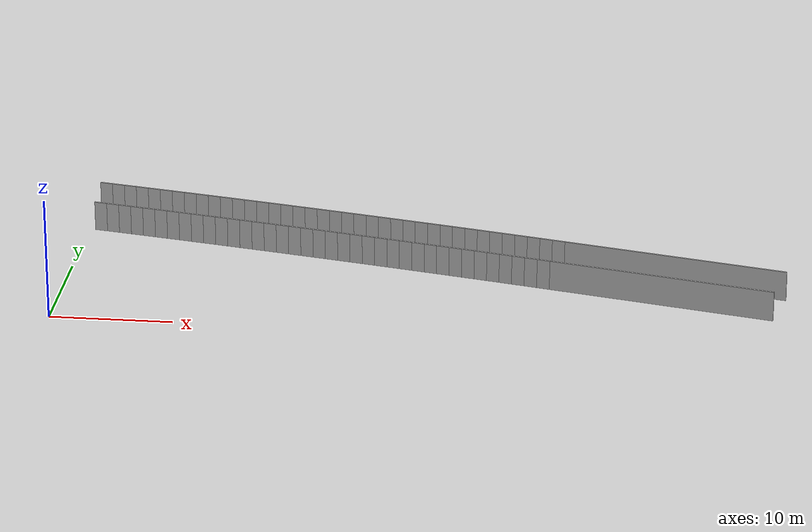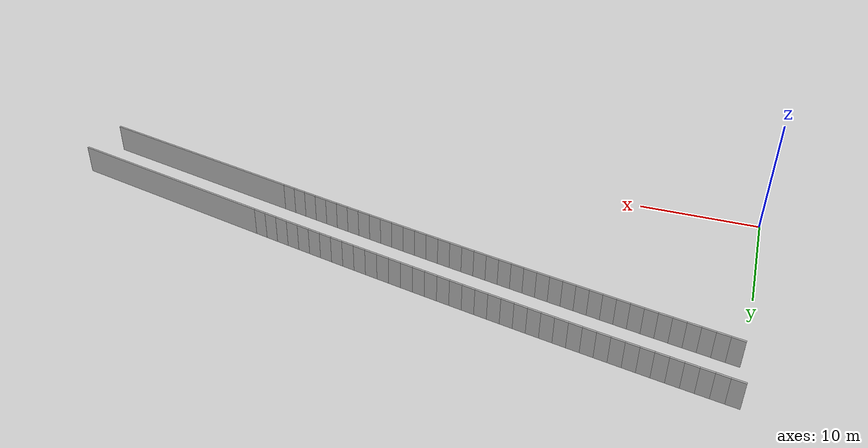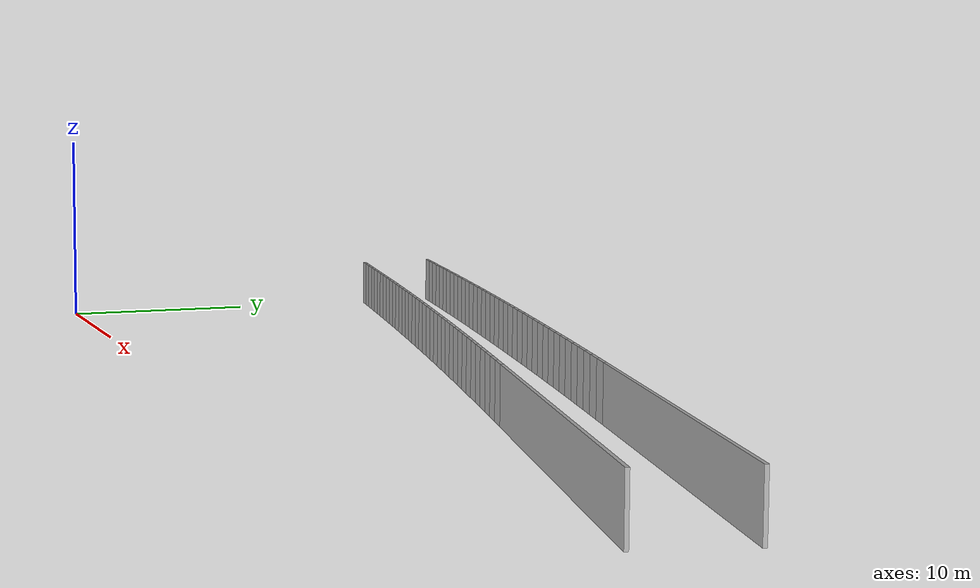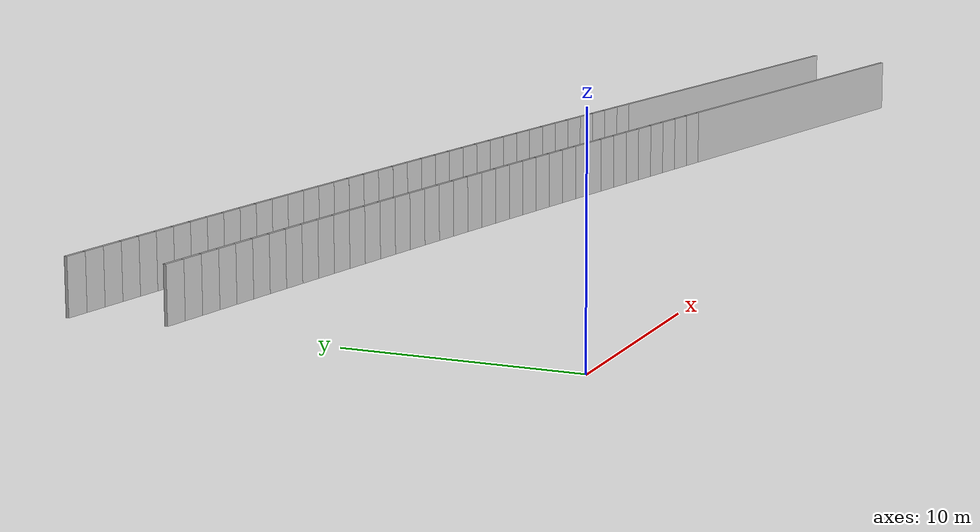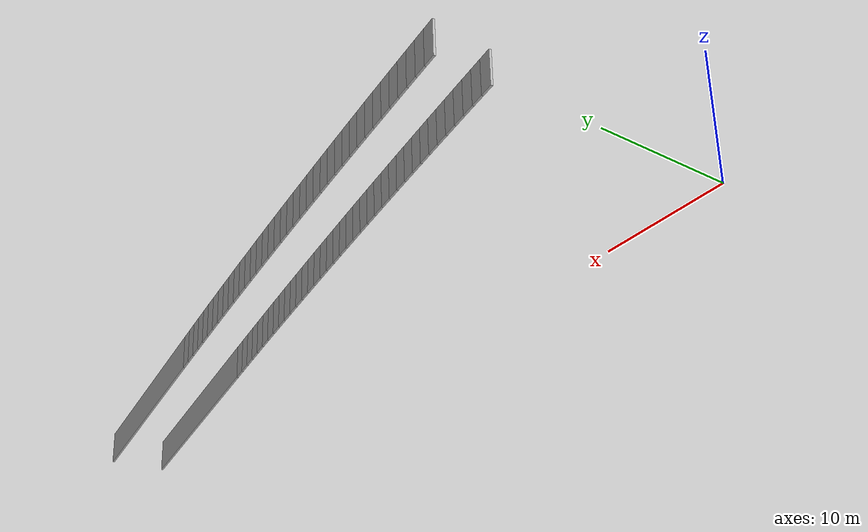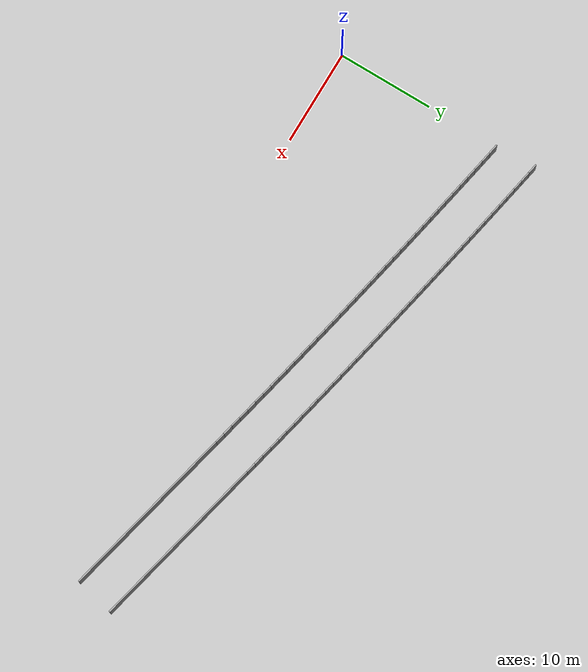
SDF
<?xml version="1.0" ?>
<sdf version="1.6">
  <model name="sps_3046">
    <pose frame="">0 0 0 0 -0 0</pose>
    <static>1</static>
    <self_collide>0</self_collide>
    <allow_auto_disable>0</allow_auto_disable>
    <link name="Wall318">
      <kinematic>0</kinematic>
      <gravity>1</gravity>
      <self_collide>0</self_collide>
      <collision name="collision">
        <geometry>
          <box>
            <size>18.671 0.15 2.5</size>
          </box>
        </geometry>
        <pose frame="">0 0 0 0 -0 0</pose>
      </collision>
      <visual name="visual">
        <geometry>
          <box>
            <size>18.671 0.15 2.5</size>
          </box>
        </geometry>
        <pose frame="">0 0 0 0 -0 0</pose>
        <cast_shadows>1</cast_shadows>
        <transparency>0.0</transparency>
      </visual>
      <pose frame="">48.5033 7.4247 1.25 0 -0 2.91246</pose>
    </link>
    <link name="Wall650">
      <kinematic>0</kinematic>
      <gravity>1</gravity>
      <self_collide>0</self_collide>
      <collision name="collision">
        <geometry>
          <box>
            <size>18.6821 0.15 2.5</size>
          </box>
        </geometry>
        <pose frame="">0 0 0 0 -0 0</pose>
      </collision>
      <visual name="visual">
        <geometry>
          <box>
            <size>18.6821 0.15 2.5</size>
          </box>
        </geometry>
        <pose frame="">0 0 0 0 -0 0</pose>
        <cast_shadows>1</cast_shadows>
        <transparency>0.0</transparency>
      </visual>
      <pose frame="">49.4523 11.4541 1.25 0 0 -0.229081</pose>
    </link>
    <link name="Wall8104">
      <kinematic>0</kinematic>
      <gravity>1</gravity>
      <self_collide>0</self_collide>
      <collision name="collision">
        <geometry>
          <box>
            <size>1.07591 0.15 2.5</size>
          </box>
        </geometry>
        <pose frame="">0 0 0 0 -0 0</pose>
      </collision>
      <visual name="visual">
        <geometry>
          <box>
            <size>1.07591 0.15 2.5</size>
          </box>
        </geometry>
        <pose frame="">0 0 0 0 -0 0</pose>
        <cast_shadows>1</cast_shadows>
        <transparency>0.0</transparency>
      </visual>
      <pose frame="">38.8879 9.66731 1.25 0 -0 2.91245</pose>
    </link>
    <link name="Wall8105">
      <kinematic>0</kinematic>
      <gravity>1</gravity>
      <self_collide>0</self_collide>
      <collision name="collision">
        <geometry>
          <box>
            <size>1.07587 0.15 2.5</size>
          </box>
        </geometry>
        <pose frame="">0 0 0 0 -0 0</pose>
      </collision>
      <visual name="visual">
        <geometry>
          <box>
            <size>1.07587 0.15 2.5</size>
          </box>
        </geometry>
        <pose frame="">0 0 0 0 -0 0</pose>
        <cast_shadows>1</cast_shadows>
        <transparency>0.0</transparency>
      </visual>
      <pose frame="">37.84 9.91121 1.25 0 -0 2.91337</pose>
    </link>
    <link name="Wall8106">
      <kinematic>0</kinematic>
      <gravity>1</gravity>
      <self_collide>0</self_collide>
      <collision name="collision">
        <geometry>
          <box>
            <size>1.07597 0.15 2.5</size>
          </box>
        </geometry>
        <pose frame="">0 0 0 0 -0 0</pose>
      </collision>
      <visual name="visual">
        <geometry>
          <box>
            <size>1.07597 0.15 2.5</size>
          </box>
        </geometry>
        <pose frame="">0 0 0 0 -0 0</pose>
        <cast_shadows>1</cast_shadows>
        <transparency>0.0</transparency>
      </visual>
      <pose frame="">36.7919 10.1539 1.25 0 -0 2.91473</pose>
    </link>
    <link name="Wall8107">
      <kinematic>0</kinematic>
      <gravity>1</gravity>
      <self_collide>0</self_collide>
      <collision name="collision">
        <geometry>
          <box>
            <size>1.07592 0.15 2.5</size>
          </box>
        </geometry>
        <pose frame="">0 0 0 0 -0 0</pose>
      </collision>
      <visual name="visual">
        <geometry>
          <box>
            <size>1.07592 0.15 2.5</size>
          </box>
        </geometry>
        <pose frame="">0 0 0 0 -0 0</pose>
        <cast_shadows>1</cast_shadows>
        <transparency>0.0</transparency>
      </visual>
      <pose frame="">35.7434 10.3954 1.25 0 -0 2.91571</pose>
    </link>
    <link name="Wall8108">
      <kinematic>0</kinematic>
      <gravity>1</gravity>
      <self_collide>0</self_collide>
      <collision name="collision">
        <geometry>
          <box>
            <size>1.07607 0.15 2.5</size>
          </box>
        </geometry>
        <pose frame="">0 0 0 0 -0 0</pose>
      </collision>
      <visual name="visual">
        <geometry>
          <box>
            <size>1.07607 0.15 2.5</size>
          </box>
        </geometry>
        <pose frame="">0 0 0 0 -0 0</pose>
        <cast_shadows>1</cast_shadows>
        <transparency>0.0</transparency>
      </visual>
      <pose frame="">34.6946 10.6358 1.25 0 -0 2.91685</pose>
    </link>
    <link name="Wall8109">
      <kinematic>0</kinematic>
      <gravity>1</gravity>
      <self_collide>0</self_collide>
      <collision name="collision">
        <geometry>
          <box>
            <size>1.07598 0.15 2.5</size>
          </box>
        </geometry>
        <pose frame="">0 0 0 0 -0 0</pose>
      </collision>
      <visual name="visual">
        <geometry>
          <box>
            <size>1.07598 0.15 2.5</size>
          </box>
        </geometry>
        <pose frame="">0 0 0 0 -0 0</pose>
        <cast_shadows>1</cast_shadows>
        <transparency>0.0</transparency>
      </visual>
      <pose frame="">33.6455 10.875 1.25 0 -0 2.918</pose>
    </link>
    <link name="Wall8110">
      <kinematic>0</kinematic>
      <gravity>1</gravity>
      <self_collide>0</self_collide>
      <collision name="collision">
        <geometry>
          <box>
            <size>1.07596 0.15 2.5</size>
          </box>
        </geometry>
        <pose frame="">0 0 0 0 -0 0</pose>
      </collision>
      <visual name="visual">
        <geometry>
          <box>
            <size>1.07596 0.15 2.5</size>
          </box>
        </geometry>
        <pose frame="">0 0 0 0 -0 0</pose>
        <cast_shadows>1</cast_shadows>
        <transparency>0.0</transparency>
      </visual>
      <pose frame="">32.5962 11.113 1.25 0 -0 2.9191</pose>
    </link>
    <link name="Wall8111">
      <kinematic>0</kinematic>
      <gravity>1</gravity>
      <self_collide>0</self_collide>
      <collision name="collision">
        <geometry>
          <box>
            <size>1.07581 0.15 2.5</size>
          </box>
        </geometry>
        <pose frame="">0 0 0 0 -0 0</pose>
      </collision>
      <visual name="visual">
        <geometry>
          <box>
            <size>1.07581 0.15 2.5</size>
          </box>
        </geometry>
        <pose frame="">0 0 0 0 -0 0</pose>
        <cast_shadows>1</cast_shadows>
        <transparency>0.0</transparency>
      </visual>
      <pose frame="">31.5467 11.3498 1.25 0 -0 2.92023</pose>
    </link>
    <link name="Wall8112">
      <kinematic>0</kinematic>
      <gravity>1</gravity>
      <self_collide>0</self_collide>
      <collision name="collision">
        <geometry>
          <box>
            <size>1.07596 0.15 2.5</size>
          </box>
        </geometry>
        <pose frame="">0 0 0 0 -0 0</pose>
      </collision>
      <visual name="visual">
        <geometry>
          <box>
            <size>1.07596 0.15 2.5</size>
          </box>
        </geometry>
        <pose frame="">0 0 0 0 -0 0</pose>
        <cast_shadows>1</cast_shadows>
        <transparency>0.0</transparency>
      </visual>
      <pose frame="">30.4969 11.5854 1.25 0 -0 2.92142</pose>
    </link>
    <link name="Wall8113">
      <kinematic>0</kinematic>
      <gravity>1</gravity>
      <self_collide>0</self_collide>
      <collision name="collision">
        <geometry>
          <box>
            <size>1.07595 0.15 2.5</size>
          </box>
        </geometry>
        <pose frame="">0 0 0 0 -0 0</pose>
      </collision>
      <visual name="visual">
        <geometry>
          <box>
            <size>1.07595 0.15 2.5</size>
          </box>
        </geometry>
        <pose frame="">0 0 0 0 -0 0</pose>
        <cast_shadows>1</cast_shadows>
        <transparency>0.0</transparency>
      </visual>
      <pose frame="">29.4468 11.8198 1.25 0 -0 2.92252</pose>
    </link>
    <link name="Wall8114">
      <kinematic>0</kinematic>
      <gravity>1</gravity>
      <self_collide>0</self_collide>
      <collision name="collision">
        <geometry>
          <box>
            <size>1.07603 0.15 2.5</size>
          </box>
        </geometry>
        <pose frame="">0 0 0 0 -0 0</pose>
      </collision>
      <visual name="visual">
        <geometry>
          <box>
            <size>1.07603 0.15 2.5</size>
          </box>
        </geometry>
        <pose frame="">0 0 0 0 -0 0</pose>
        <cast_shadows>1</cast_shadows>
        <transparency>0.0</transparency>
      </visual>
      <pose frame="">28.3964 12.053 1.25 0 -0 2.92376</pose>
    </link>
    <link name="Wall8115">
      <kinematic>0</kinematic>
      <gravity>1</gravity>
      <self_collide>0</self_collide>
      <collision name="collision">
        <geometry>
          <box>
            <size>1.07597 0.15 2.5</size>
          </box>
        </geometry>
        <pose frame="">0 0 0 0 -0 0</pose>
      </collision>
      <visual name="visual">
        <geometry>
          <box>
            <size>1.07597 0.15 2.5</size>
          </box>
        </geometry>
        <pose frame="">0 0 0 0 -0 0</pose>
        <cast_shadows>1</cast_shadows>
        <transparency>0.0</transparency>
      </visual>
      <pose frame="">27.3457 12.285 1.25 0 -0 2.92479</pose>
    </link>
    <link name="Wall8116">
      <kinematic>0</kinematic>
      <gravity>1</gravity>
      <self_collide>0</self_collide>
      <collision name="collision">
        <geometry>
          <box>
            <size>1.07593 0.15 2.5</size>
          </box>
        </geometry>
        <pose frame="">0 0 0 0 -0 0</pose>
      </collision>
      <visual name="visual">
        <geometry>
          <box>
            <size>1.07593 0.15 2.5</size>
          </box>
        </geometry>
        <pose frame="">0 0 0 0 -0 0</pose>
        <cast_shadows>1</cast_shadows>
        <transparency>0.0</transparency>
      </visual>
      <pose frame="">26.2948 12.5158 1.25 0 -0 2.92601</pose>
    </link>
    <link name="Wall8117">
      <kinematic>0</kinematic>
      <gravity>1</gravity>
      <self_collide>0</self_collide>
      <collision name="collision">
        <geometry>
          <box>
            <size>1.07586 0.15 2.5</size>
          </box>
        </geometry>
        <pose frame="">0 0 0 0 -0 0</pose>
      </collision>
      <visual name="visual">
        <geometry>
          <box>
            <size>1.07586 0.15 2.5</size>
          </box>
        </geometry>
        <pose frame="">0 0 0 0 -0 0</pose>
        <cast_shadows>1</cast_shadows>
        <transparency>0.0</transparency>
      </visual>
      <pose frame="">25.2436 12.7454 1.25 0 -0 2.9271</pose>
    </link>
    <link name="Wall8118">
      <kinematic>0</kinematic>
      <gravity>1</gravity>
      <self_collide>0</self_collide>
      <collision name="collision">
        <geometry>
          <box>
            <size>1.07601 0.15 2.5</size>
          </box>
        </geometry>
        <pose frame="">0 0 0 0 -0 0</pose>
      </collision>
      <visual name="visual">
        <geometry>
          <box>
            <size>1.07601 0.15 2.5</size>
          </box>
        </geometry>
        <pose frame="">0 0 0 0 -0 0</pose>
        <cast_shadows>1</cast_shadows>
        <transparency>0.0</transparency>
      </visual>
      <pose frame="">24.1923 12.9739 1.25 0 -0 2.92805</pose>
    </link>
    <link name="Wall8119">
      <kinematic>0</kinematic>
      <gravity>1</gravity>
      <self_collide>0</self_collide>
      <collision name="collision">
        <geometry>
          <box>
            <size>1.07594 0.15 2.5</size>
          </box>
        </geometry>
        <pose frame="">0 0 0 0 -0 0</pose>
      </collision>
      <visual name="visual">
        <geometry>
          <box>
            <size>1.07594 0.15 2.5</size>
          </box>
        </geometry>
        <pose frame="">0 0 0 0 -0 0</pose>
        <cast_shadows>1</cast_shadows>
        <transparency>0.0</transparency>
      </visual>
      <pose frame="">23.1406 13.2012 1.25 0 -0 2.92943</pose>
    </link>
    <link name="Wall8120">
      <kinematic>0</kinematic>
      <gravity>1</gravity>
      <self_collide>0</self_collide>
      <collision name="collision">
        <geometry>
          <box>
            <size>1.07606 0.15 2.5</size>
          </box>
        </geometry>
        <pose frame="">0 0 0 0 -0 0</pose>
      </collision>
      <visual name="visual">
        <geometry>
          <box>
            <size>1.07606 0.15 2.5</size>
          </box>
        </geometry>
        <pose frame="">0 0 0 0 -0 0</pose>
        <cast_shadows>1</cast_shadows>
        <transparency>0.0</transparency>
      </visual>
      <pose frame="">22.0886 13.4272 1.25 0 -0 2.93056</pose>
    </link>
    <link name="Wall8121">
      <kinematic>0</kinematic>
      <gravity>1</gravity>
      <self_collide>0</self_collide>
      <collision name="collision">
        <geometry>
          <box>
            <size>1.07582 0.15 2.5</size>
          </box>
        </geometry>
        <pose frame="">0 0 0 0 -0 0</pose>
      </collision>
      <visual name="visual">
        <geometry>
          <box>
            <size>1.07582 0.15 2.5</size>
          </box>
        </geometry>
        <pose frame="">0 0 0 0 -0 0</pose>
        <cast_shadows>1</cast_shadows>
        <transparency>0.0</transparency>
      </visual>
      <pose frame="">21.0364 13.652 1.25 0 -0 2.93161</pose>
    </link>
    <link name="Wall8122">
      <kinematic>0</kinematic>
      <gravity>1</gravity>
      <self_collide>0</self_collide>
      <collision name="collision">
        <geometry>
          <box>
            <size>1.07597 0.15 2.5</size>
          </box>
        </geometry>
        <pose frame="">0 0 0 0 -0 0</pose>
      </collision>
      <visual name="visual">
        <geometry>
          <box>
            <size>1.07597 0.15 2.5</size>
          </box>
        </geometry>
        <pose frame="">0 0 0 0 -0 0</pose>
        <cast_shadows>1</cast_shadows>
        <transparency>0.0</transparency>
      </visual>
      <pose frame="">19.984 13.8756 1.25 0 -0 2.93286</pose>
    </link>
    <link name="Wall8123">
      <kinematic>0</kinematic>
      <gravity>1</gravity>
      <self_collide>0</self_collide>
      <collision name="collision">
        <geometry>
          <box>
            <size>1.07609 0.15 2.5</size>
          </box>
        </geometry>
        <pose frame="">0 0 0 0 -0 0</pose>
      </collision>
      <visual name="visual">
        <geometry>
          <box>
            <size>1.07609 0.15 2.5</size>
          </box>
        </geometry>
        <pose frame="">0 0 0 0 -0 0</pose>
        <cast_shadows>1</cast_shadows>
        <transparency>0.0</transparency>
      </visual>
      <pose frame="">18.9312 14.098 1.25 0 -0 2.93399</pose>
    </link>
    <link name="Wall8124">
      <kinematic>0</kinematic>
      <gravity>1</gravity>
      <self_collide>0</self_collide>
      <collision name="collision">
        <geometry>
          <box>
            <size>1.07594 0.15 2.5</size>
          </box>
        </geometry>
        <pose frame="">0 0 0 0 -0 0</pose>
      </collision>
      <visual name="visual">
        <geometry>
          <box>
            <size>1.07594 0.15 2.5</size>
          </box>
        </geometry>
        <pose frame="">0 0 0 0 -0 0</pose>
        <cast_shadows>1</cast_shadows>
        <transparency>0.0</transparency>
      </visual>
      <pose frame="">17.8782 14.3193 1.25 0 -0 2.93489</pose>
    </link>
    <link name="Wall8125">
      <kinematic>0</kinematic>
      <gravity>1</gravity>
      <self_collide>0</self_collide>
      <collision name="collision">
        <geometry>
          <box>
            <size>1.07602 0.15 2.5</size>
          </box>
        </geometry>
        <pose frame="">0 0 0 0 -0 0</pose>
      </collision>
      <visual name="visual">
        <geometry>
          <box>
            <size>1.07602 0.15 2.5</size>
          </box>
        </geometry>
        <pose frame="">0 0 0 0 -0 0</pose>
        <cast_shadows>1</cast_shadows>
        <transparency>0.0</transparency>
      </visual>
      <pose frame="">16.8249 14.5394 1.25 0 -0 2.93623</pose>
    </link>
    <link name="Wall8126">
      <kinematic>0</kinematic>
      <gravity>1</gravity>
      <self_collide>0</self_collide>
      <collision name="collision">
        <geometry>
          <box>
            <size>1.07593 0.15 2.5</size>
          </box>
        </geometry>
        <pose frame="">0 0 0 0 -0 0</pose>
      </collision>
      <visual name="visual">
        <geometry>
          <box>
            <size>1.07593 0.15 2.5</size>
          </box>
        </geometry>
        <pose frame="">0 0 0 0 -0 0</pose>
        <cast_shadows>1</cast_shadows>
        <transparency>0.0</transparency>
      </visual>
      <pose frame="">15.7714 14.7582 1.25 0 -0 2.93743</pose>
    </link>
    <link name="Wall8127">
      <kinematic>0</kinematic>
      <gravity>1</gravity>
      <self_collide>0</self_collide>
      <collision name="collision">
        <geometry>
          <box>
            <size>1.07589 0.15 2.5</size>
          </box>
        </geometry>
        <pose frame="">0 0 0 0 -0 0</pose>
      </collision>
      <visual name="visual">
        <geometry>
          <box>
            <size>1.07589 0.15 2.5</size>
          </box>
        </geometry>
        <pose frame="">0 0 0 0 -0 0</pose>
        <cast_shadows>1</cast_shadows>
        <transparency>0.0</transparency>
      </visual>
      <pose frame="">14.7178 14.9758 1.25 0 -0 2.93847</pose>
    </link>
    <link name="Wall8128">
      <kinematic>0</kinematic>
      <gravity>1</gravity>
      <self_collide>0</self_collide>
      <collision name="collision">
        <geometry>
          <box>
            <size>1.07605 0.15 2.5</size>
          </box>
        </geometry>
        <pose frame="">0 0 0 0 -0 0</pose>
      </collision>
      <visual name="visual">
        <geometry>
          <box>
            <size>1.07605 0.15 2.5</size>
          </box>
        </geometry>
        <pose frame="">0 0 0 0 -0 0</pose>
        <cast_shadows>1</cast_shadows>
        <transparency>0.0</transparency>
      </visual>
      <pose frame="">13.6638 15.1922 1.25 0 -0 2.93971</pose>
    </link>
    <link name="Wall8129">
      <kinematic>0</kinematic>
      <gravity>1</gravity>
      <self_collide>0</self_collide>
      <collision name="collision">
        <geometry>
          <box>
            <size>1.07606 0.15 2.5</size>
          </box>
        </geometry>
        <pose frame="">0 0 0 0 -0 0</pose>
      </collision>
      <visual name="visual">
        <geometry>
          <box>
            <size>1.07606 0.15 2.5</size>
          </box>
        </geometry>
        <pose frame="">0 0 0 0 -0 0</pose>
        <cast_shadows>1</cast_shadows>
        <transparency>0.0</transparency>
      </visual>
      <pose frame="">12.6095 15.4074 1.25 0 -0 2.94082</pose>
    </link>
    <link name="Wall8130">
      <kinematic>0</kinematic>
      <gravity>1</gravity>
      <self_collide>0</self_collide>
      <collision name="collision">
        <geometry>
          <box>
            <size>1.07577 0.15 2.5</size>
          </box>
        </geometry>
        <pose frame="">0 0 0 0 -0 0</pose>
      </collision>
      <visual name="visual">
        <geometry>
          <box>
            <size>1.07577 0.15 2.5</size>
          </box>
        </geometry>
        <pose frame="">0 0 0 0 -0 0</pose>
        <cast_shadows>1</cast_shadows>
        <transparency>0.0</transparency>
      </visual>
      <pose frame="">11.555 15.6214 1.25 0 -0 2.94186</pose>
    </link>
    <link name="Wall8131">
      <kinematic>0</kinematic>
      <gravity>1</gravity>
      <self_collide>0</self_collide>
      <collision name="collision">
        <geometry>
          <box>
            <size>1.07616 0.15 2.5</size>
          </box>
        </geometry>
        <pose frame="">0 0 0 0 -0 0</pose>
      </collision>
      <visual name="visual">
        <geometry>
          <box>
            <size>1.07616 0.15 2.5</size>
          </box>
        </geometry>
        <pose frame="">0 0 0 0 -0 0</pose>
        <cast_shadows>1</cast_shadows>
        <transparency>0.0</transparency>
      </visual>
      <pose frame="">10.5004 15.8343 1.25 0 -0 2.94292</pose>
    </link>
    <link name="Wall8132">
      <kinematic>0</kinematic>
      <gravity>1</gravity>
      <self_collide>0</self_collide>
      <collision name="collision">
        <geometry>
          <box>
            <size>1.07589 0.15 2.5</size>
          </box>
        </geometry>
        <pose frame="">0 0 0 0 -0 0</pose>
      </collision>
      <visual name="visual">
        <geometry>
          <box>
            <size>1.07589 0.15 2.5</size>
          </box>
        </geometry>
        <pose frame="">0 0 0 0 -0 0</pose>
        <cast_shadows>1</cast_shadows>
        <transparency>0.0</transparency>
      </visual>
      <pose frame="">9.44537 16.046 1.25 0 -0 2.9442</pose>
    </link>
    <link name="Wall8133">
      <kinematic>0</kinematic>
      <gravity>1</gravity>
      <self_collide>0</self_collide>
      <collision name="collision">
        <geometry>
          <box>
            <size>1.07607 0.15 2.5</size>
          </box>
        </geometry>
        <pose frame="">0 0 0 0 -0 0</pose>
      </collision>
      <visual name="visual">
        <geometry>
          <box>
            <size>1.07607 0.15 2.5</size>
          </box>
        </geometry>
        <pose frame="">0 0 0 0 -0 0</pose>
        <cast_shadows>1</cast_shadows>
        <transparency>0.0</transparency>
      </visual>
      <pose frame="">8.39016 16.2564 1.25 0 -0 2.94539</pose>
    </link>
    <link name="Wall8134">
      <kinematic>0</kinematic>
      <gravity>1</gravity>
      <self_collide>0</self_collide>
      <collision name="collision">
        <geometry>
          <box>
            <size>1.07584 0.15 2.5</size>
          </box>
        </geometry>
        <pose frame="">0 0 0 0 -0 0</pose>
      </collision>
      <visual name="visual">
        <geometry>
          <box>
            <size>1.07584 0.15 2.5</size>
          </box>
        </geometry>
        <pose frame="">0 0 0 0 -0 0</pose>
        <cast_shadows>1</cast_shadows>
        <transparency>0.0</transparency>
      </visual>
      <pose frame="">7.33474 16.4656 1.25 0 -0 2.94644</pose>
    </link>
    <link name="Wall8135">
      <kinematic>0</kinematic>
      <gravity>1</gravity>
      <self_collide>0</self_collide>
      <collision name="collision">
        <geometry>
          <box>
            <size>1.07596 0.15 2.5</size>
          </box>
        </geometry>
        <pose frame="">0 0 0 0 -0 0</pose>
      </collision>
      <visual name="visual">
        <geometry>
          <box>
            <size>1.07596 0.15 2.5</size>
          </box>
        </geometry>
        <pose frame="">0 0 0 0 -0 0</pose>
        <cast_shadows>1</cast_shadows>
        <transparency>0.0</transparency>
      </visual>
      <pose frame="">6.27914 16.6736 1.25 0 -0 2.94762</pose>
    </link>
    <link name="Wall8136">
      <kinematic>0</kinematic>
      <gravity>1</gravity>
      <self_collide>0</self_collide>
      <collision name="collision">
        <geometry>
          <box>
            <size>1.07591 0.15 2.5</size>
          </box>
        </geometry>
        <pose frame="">0 0 0 0 -0 0</pose>
      </collision>
      <visual name="visual">
        <geometry>
          <box>
            <size>1.07591 0.15 2.5</size>
          </box>
        </geometry>
        <pose frame="">0 0 0 0 -0 0</pose>
        <cast_shadows>1</cast_shadows>
        <transparency>0.0</transparency>
      </visual>
      <pose frame="">5.22326 16.8804 1.25 0 -0 2.94877</pose>
    </link>
    <link name="Wall8137">
      <kinematic>0</kinematic>
      <gravity>1</gravity>
      <self_collide>0</self_collide>
      <collision name="collision">
        <geometry>
          <box>
            <size>1.07593 0.15 2.5</size>
          </box>
        </geometry>
        <pose frame="">0 0 0 0 -0 0</pose>
      </collision>
      <visual name="visual">
        <geometry>
          <box>
            <size>1.07593 0.15 2.5</size>
          </box>
        </geometry>
        <pose frame="">0 0 0 0 -0 0</pose>
        <cast_shadows>1</cast_shadows>
        <transparency>0.0</transparency>
      </visual>
      <pose frame="">4.16717 17.086 1.25 0 -0 2.94987</pose>
    </link>
    <link name="Wall8138">
      <kinematic>0</kinematic>
      <gravity>1</gravity>
      <self_collide>0</self_collide>
      <collision name="collision">
        <geometry>
          <box>
            <size>1.07609 0.15 2.5</size>
          </box>
        </geometry>
        <pose frame="">0 0 0 0 -0 0</pose>
      </collision>
      <visual name="visual">
        <geometry>
          <box>
            <size>1.07609 0.15 2.5</size>
          </box>
        </geometry>
        <pose frame="">0 0 0 0 -0 0</pose>
        <cast_shadows>1</cast_shadows>
        <transparency>0.0</transparency>
      </visual>
      <pose frame="">3.11077 17.2905 1.25 0 -0 2.95088</pose>
    </link>
    <link name="Wall8139">
      <kinematic>0</kinematic>
      <gravity>1</gravity>
      <self_collide>0</self_collide>
      <collision name="collision">
        <geometry>
          <box>
            <size>1.0759 0.15 2.5</size>
          </box>
        </geometry>
        <pose frame="">0 0 0 0 -0 0</pose>
      </collision>
      <visual name="visual">
        <geometry>
          <box>
            <size>1.0759 0.15 2.5</size>
          </box>
        </geometry>
        <pose frame="">0 0 0 0 -0 0</pose>
        <cast_shadows>1</cast_shadows>
        <transparency>0.0</transparency>
      </visual>
      <pose frame="">2.05416 17.4938 1.25 0 -0 2.95212</pose>
    </link>
    <link name="Wall8140">
      <kinematic>0</kinematic>
      <gravity>1</gravity>
      <self_collide>0</self_collide>
      <collision name="collision">
        <geometry>
          <box>
            <size>1.07603 0.15 2.5</size>
          </box>
        </geometry>
        <pose frame="">0 0 0 0 -0 0</pose>
      </collision>
      <visual name="visual">
        <geometry>
          <box>
            <size>1.07603 0.15 2.5</size>
          </box>
        </geometry>
        <pose frame="">0 0 0 0 -0 0</pose>
        <cast_shadows>1</cast_shadows>
        <transparency>0.0</transparency>
      </visual>
      <pose frame="">0.997337 17.6958 1.25 0 -0 2.9533</pose>
    </link>
    <link name="Wall9069">
      <kinematic>0</kinematic>
      <gravity>1</gravity>
      <self_collide>0</self_collide>
      <collision name="collision">
        <geometry>
          <box>
            <size>1.08065 0.15 2.5</size>
          </box>
        </geometry>
        <pose frame="">0 0 0 0 -0 0</pose>
      </collision>
      <visual name="visual">
        <geometry>
          <box>
            <size>1.08065 0.15 2.5</size>
          </box>
        </geometry>
        <pose frame="">0 0 0 0 -0 0</pose>
        <cast_shadows>1</cast_shadows>
        <transparency>0.0</transparency>
      </visual>
      <pose frame="">39.8291 13.6981 1.25 0 -0 2.91231</pose>
    </link>
    <link name="Wall9070">
      <kinematic>0</kinematic>
      <gravity>1</gravity>
      <self_collide>0</self_collide>
      <collision name="collision">
        <geometry>
          <box>
            <size>1.08062 0.15 2.5</size>
          </box>
        </geometry>
        <pose frame="">0 0 0 0 -0 0</pose>
      </collision>
      <visual name="visual">
        <geometry>
          <box>
            <size>1.08062 0.15 2.5</size>
          </box>
        </geometry>
        <pose frame="">0 0 0 0 -0 0</pose>
        <cast_shadows>1</cast_shadows>
        <transparency>0.0</transparency>
      </visual>
      <pose frame="">38.7766 13.9431 1.25 0 -0 2.91341</pose>
    </link>
    <link name="Wall9071">
      <kinematic>0</kinematic>
      <gravity>1</gravity>
      <self_collide>0</self_collide>
      <collision name="collision">
        <geometry>
          <box>
            <size>1.08075 0.15 2.5</size>
          </box>
        </geometry>
        <pose frame="">0 0 0 0 -0 0</pose>
      </collision>
      <visual name="visual">
        <geometry>
          <box>
            <size>1.08075 0.15 2.5</size>
          </box>
        </geometry>
        <pose frame="">0 0 0 0 -0 0</pose>
        <cast_shadows>1</cast_shadows>
        <transparency>0.0</transparency>
      </visual>
      <pose frame="">37.7237 14.1869 1.25 0 -0 2.91465</pose>
    </link>
    <link name="Wall9072">
      <kinematic>0</kinematic>
      <gravity>1</gravity>
      <self_collide>0</self_collide>
      <collision name="collision">
        <geometry>
          <box>
            <size>1.08061 0.15 2.5</size>
          </box>
        </geometry>
        <pose frame="">0 0 0 0 -0 0</pose>
      </collision>
      <visual name="visual">
        <geometry>
          <box>
            <size>1.08061 0.15 2.5</size>
          </box>
        </geometry>
        <pose frame="">0 0 0 0 -0 0</pose>
        <cast_shadows>1</cast_shadows>
        <transparency>0.0</transparency>
      </visual>
      <pose frame="">36.6706 14.4295 1.25 0 -0 2.91573</pose>
    </link>
    <link name="Wall9073">
      <kinematic>0</kinematic>
      <gravity>1</gravity>
      <self_collide>0</self_collide>
      <collision name="collision">
        <geometry>
          <box>
            <size>1.08075 0.15 2.5</size>
          </box>
        </geometry>
        <pose frame="">0 0 0 0 -0 0</pose>
      </collision>
      <visual name="visual">
        <geometry>
          <box>
            <size>1.08075 0.15 2.5</size>
          </box>
        </geometry>
        <pose frame="">0 0 0 0 -0 0</pose>
        <cast_shadows>1</cast_shadows>
        <transparency>0.0</transparency>
      </visual>
      <pose frame="">35.6173 14.6709 1.25 0 -0 2.91691</pose>
    </link>
    <link name="Wall9074">
      <kinematic>0</kinematic>
      <gravity>1</gravity>
      <self_collide>0</self_collide>
      <collision name="collision">
        <geometry>
          <box>
            <size>1.08073 0.15 2.5</size>
          </box>
        </geometry>
        <pose frame="">0 0 0 0 -0 0</pose>
      </collision>
      <visual name="visual">
        <geometry>
          <box>
            <size>1.08073 0.15 2.5</size>
          </box>
        </geometry>
        <pose frame="">0 0 0 0 -0 0</pose>
        <cast_shadows>1</cast_shadows>
        <transparency>0.0</transparency>
      </visual>
      <pose frame="">34.5636 14.9111 1.25 0 -0 2.91801</pose>
    </link>
    <link name="Wall9075">
      <kinematic>0</kinematic>
      <gravity>1</gravity>
      <self_collide>0</self_collide>
      <collision name="collision">
        <geometry>
          <box>
            <size>1.08064 0.15 2.5</size>
          </box>
        </geometry>
        <pose frame="">0 0 0 0 -0 0</pose>
      </collision>
      <visual name="visual">
        <geometry>
          <box>
            <size>1.08064 0.15 2.5</size>
          </box>
        </geometry>
        <pose frame="">0 0 0 0 -0 0</pose>
        <cast_shadows>1</cast_shadows>
        <transparency>0.0</transparency>
      </visual>
      <pose frame="">33.5096 15.1501 1.25 0 -0 2.91915</pose>
    </link>
    <link name="Wall9076">
      <kinematic>0</kinematic>
      <gravity>1</gravity>
      <self_collide>0</self_collide>
      <collision name="collision">
        <geometry>
          <box>
            <size>1.08055 0.15 2.5</size>
          </box>
        </geometry>
        <pose frame="">0 0 0 0 -0 0</pose>
      </collision>
      <visual name="visual">
        <geometry>
          <box>
            <size>1.08055 0.15 2.5</size>
          </box>
        </geometry>
        <pose frame="">0 0 0 0 -0 0</pose>
        <cast_shadows>1</cast_shadows>
        <transparency>0.0</transparency>
      </visual>
      <pose frame="">32.4555 15.3879 1.25 0 -0 2.92029</pose>
    </link>
    <link name="Wall9077">
      <kinematic>0</kinematic>
      <gravity>1</gravity>
      <self_collide>0</self_collide>
      <collision name="collision">
        <geometry>
          <box>
            <size>1.08083 0.15 2.5</size>
          </box>
        </geometry>
        <pose frame="">0 0 0 0 -0 0</pose>
      </collision>
      <visual name="visual">
        <geometry>
          <box>
            <size>1.08083 0.15 2.5</size>
          </box>
        </geometry>
        <pose frame="">0 0 0 0 -0 0</pose>
        <cast_shadows>1</cast_shadows>
        <transparency>0.0</transparency>
      </visual>
      <pose frame="">31.4011 15.6245 1.25 0 -0 2.92145</pose>
    </link>
    <link name="Wall9078">
      <kinematic>0</kinematic>
      <gravity>1</gravity>
      <self_collide>0</self_collide>
      <collision name="collision">
        <geometry>
          <box>
            <size>1.08067 0.15 2.5</size>
          </box>
        </geometry>
        <pose frame="">0 0 0 0 -0 0</pose>
      </collision>
      <visual name="visual">
        <geometry>
          <box>
            <size>1.08067 0.15 2.5</size>
          </box>
        </geometry>
        <pose frame="">0 0 0 0 -0 0</pose>
        <cast_shadows>1</cast_shadows>
        <transparency>0.0</transparency>
      </visual>
      <pose frame="">30.3463 15.86 1.25 0 -0 2.9224</pose>
    </link>
    <link name="Wall9079">
      <kinematic>0</kinematic>
      <gravity>1</gravity>
      <self_collide>0</self_collide>
      <collision name="collision">
        <geometry>
          <box>
            <size>1.08054 0.15 2.5</size>
          </box>
        </geometry>
        <pose frame="">0 0 0 0 -0 0</pose>
      </collision>
      <visual name="visual">
        <geometry>
          <box>
            <size>1.08054 0.15 2.5</size>
          </box>
        </geometry>
        <pose frame="">0 0 0 0 -0 0</pose>
        <cast_shadows>1</cast_shadows>
        <transparency>0.0</transparency>
      </visual>
      <pose frame="">29.2914 16.0943 1.25 0 -0 2.9237</pose>
    </link>
    <link name="Wall9080">
      <kinematic>0</kinematic>
      <gravity>1</gravity>
      <self_collide>0</self_collide>
      <collision name="collision">
        <geometry>
          <box>
            <size>1.08071 0.15 2.5</size>
          </box>
        </geometry>
        <pose frame="">0 0 0 0 -0 0</pose>
      </collision>
      <visual name="visual">
        <geometry>
          <box>
            <size>1.08071 0.15 2.5</size>
          </box>
        </geometry>
        <pose frame="">0 0 0 0 -0 0</pose>
        <cast_shadows>1</cast_shadows>
        <transparency>0.0</transparency>
      </visual>
      <pose frame="">28.2362 16.3273 1.25 0 -0 2.92483</pose>
    </link>
    <link name="Wall9081">
      <kinematic>0</kinematic>
      <gravity>1</gravity>
      <self_collide>0</self_collide>
      <collision name="collision">
        <geometry>
          <box>
            <size>1.08063 0.15 2.5</size>
          </box>
        </geometry>
        <pose frame="">0 0 0 0 -0 0</pose>
      </collision>
      <visual name="visual">
        <geometry>
          <box>
            <size>1.08063 0.15 2.5</size>
          </box>
        </geometry>
        <pose frame="">0 0 0 0 -0 0</pose>
        <cast_shadows>1</cast_shadows>
        <transparency>0.0</transparency>
      </visual>
      <pose frame="">27.1807 16.5591 1.25 0 -0 2.92597</pose>
    </link>
    <link name="Wall9082">
      <kinematic>0</kinematic>
      <gravity>1</gravity>
      <self_collide>0</self_collide>
      <collision name="collision">
        <geometry>
          <box>
            <size>1.08072 0.15 2.5</size>
          </box>
        </geometry>
        <pose frame="">0 0 0 0 -0 0</pose>
      </collision>
      <visual name="visual">
        <geometry>
          <box>
            <size>1.08072 0.15 2.5</size>
          </box>
        </geometry>
        <pose frame="">0 0 0 0 -0 0</pose>
        <cast_shadows>1</cast_shadows>
        <transparency>0.0</transparency>
      </visual>
      <pose frame="">26.1249 16.7897 1.25 0 -0 2.92715</pose>
    </link>
    <link name="Wall9083">
      <kinematic>0</kinematic>
      <gravity>1</gravity>
      <self_collide>0</self_collide>
      <collision name="collision">
        <geometry>
          <box>
            <size>1.08072 0.15 2.5</size>
          </box>
        </geometry>
        <pose frame="">0 0 0 0 -0 0</pose>
      </collision>
      <visual name="visual">
        <geometry>
          <box>
            <size>1.08072 0.15 2.5</size>
          </box>
        </geometry>
        <pose frame="">0 0 0 0 -0 0</pose>
        <cast_shadows>1</cast_shadows>
        <transparency>0.0</transparency>
      </visual>
      <pose frame="">25.0688 17.0191 1.25 0 -0 2.92825</pose>
    </link>
    <link name="Wall9084">
      <kinematic>0</kinematic>
      <gravity>1</gravity>
      <self_collide>0</self_collide>
      <collision name="collision">
        <geometry>
          <box>
            <size>1.08064 0.15 2.5</size>
          </box>
        </geometry>
        <pose frame="">0 0 0 0 -0 0</pose>
      </collision>
      <visual name="visual">
        <geometry>
          <box>
            <size>1.08064 0.15 2.5</size>
          </box>
        </geometry>
        <pose frame="">0 0 0 0 -0 0</pose>
        <cast_shadows>1</cast_shadows>
        <transparency>0.0</transparency>
      </visual>
      <pose frame="">24.0125 17.2473 1.25 0 -0 2.92939</pose>
    </link>
    <link name="Wall9085">
      <kinematic>0</kinematic>
      <gravity>1</gravity>
      <self_collide>0</self_collide>
      <collision name="collision">
        <geometry>
          <box>
            <size>1.08085 0.15 2.5</size>
          </box>
        </geometry>
        <pose frame="">0 0 0 0 -0 0</pose>
      </collision>
      <visual name="visual">
        <geometry>
          <box>
            <size>1.08085 0.15 2.5</size>
          </box>
        </geometry>
        <pose frame="">0 0 0 0 -0 0</pose>
        <cast_shadows>1</cast_shadows>
        <transparency>0.0</transparency>
      </visual>
      <pose frame="">22.9559 17.4744 1.25 0 -0 2.93035</pose>
    </link>
    <link name="Wall9086">
      <kinematic>0</kinematic>
      <gravity>1</gravity>
      <self_collide>0</self_collide>
      <collision name="collision">
        <geometry>
          <box>
            <size>1.08072 0.15 2.5</size>
          </box>
        </geometry>
        <pose frame="">0 0 0 0 -0 0</pose>
      </collision>
      <visual name="visual">
        <geometry>
          <box>
            <size>1.08072 0.15 2.5</size>
          </box>
        </geometry>
        <pose frame="">0 0 0 0 -0 0</pose>
        <cast_shadows>1</cast_shadows>
        <transparency>0.0</transparency>
      </visual>
      <pose frame="">21.8989 17.7003 1.25 0 -0 2.93171</pose>
    </link>
    <link name="Wall9087">
      <kinematic>0</kinematic>
      <gravity>1</gravity>
      <self_collide>0</self_collide>
      <collision name="collision">
        <geometry>
          <box>
            <size>1.08048 0.15 2.5</size>
          </box>
        </geometry>
        <pose frame="">0 0 0 0 -0 0</pose>
      </collision>
      <visual name="visual">
        <geometry>
          <box>
            <size>1.08048 0.15 2.5</size>
          </box>
        </geometry>
        <pose frame="">0 0 0 0 -0 0</pose>
        <cast_shadows>1</cast_shadows>
        <transparency>0.0</transparency>
      </visual>
      <pose frame="">20.8419 17.9249 1.25 0 -0 2.93276</pose>
    </link>
    <link name="Wall9088">
      <kinematic>0</kinematic>
      <gravity>1</gravity>
      <self_collide>0</self_collide>
      <collision name="collision">
        <geometry>
          <box>
            <size>1.08078 0.15 2.5</size>
          </box>
        </geometry>
        <pose frame="">0 0 0 0 -0 0</pose>
      </collision>
      <visual name="visual">
        <geometry>
          <box>
            <size>1.08078 0.15 2.5</size>
          </box>
        </geometry>
        <pose frame="">0 0 0 0 -0 0</pose>
        <cast_shadows>1</cast_shadows>
        <transparency>0.0</transparency>
      </visual>
      <pose frame="">19.7847 18.1483 1.25 0 -0 2.93392</pose>
    </link>
    <link name="Wall9089">
      <kinematic>0</kinematic>
      <gravity>1</gravity>
      <self_collide>0</self_collide>
      <collision name="collision">
        <geometry>
          <box>
            <size>1.08057 0.15 2.5</size>
          </box>
        </geometry>
        <pose frame="">0 0 0 0 -0 0</pose>
      </collision>
      <visual name="visual">
        <geometry>
          <box>
            <size>1.08057 0.15 2.5</size>
          </box>
        </geometry>
        <pose frame="">0 0 0 0 -0 0</pose>
        <cast_shadows>1</cast_shadows>
        <transparency>0.0</transparency>
      </visual>
      <pose frame="">18.7271 18.3705 1.25 0 -0 2.93509</pose>
    </link>
    <link name="Wall9090">
      <kinematic>0</kinematic>
      <gravity>1</gravity>
      <self_collide>0</self_collide>
      <collision name="collision">
        <geometry>
          <box>
            <size>1.0807 0.15 2.5</size>
          </box>
        </geometry>
        <pose frame="">0 0 0 0 -0 0</pose>
      </collision>
      <visual name="visual">
        <geometry>
          <box>
            <size>1.0807 0.15 2.5</size>
          </box>
        </geometry>
        <pose frame="">0 0 0 0 -0 0</pose>
        <cast_shadows>1</cast_shadows>
        <transparency>0.0</transparency>
      </visual>
      <pose frame="">17.6693 18.5915 1.25 0 -0 2.93621</pose>
    </link>
    <link name="Wall9091">
      <kinematic>0</kinematic>
      <gravity>1</gravity>
      <self_collide>0</self_collide>
      <collision name="collision">
        <geometry>
          <box>
            <size>1.0807 0.15 2.5</size>
          </box>
        </geometry>
        <pose frame="">0 0 0 0 -0 0</pose>
      </collision>
      <visual name="visual">
        <geometry>
          <box>
            <size>1.0807 0.15 2.5</size>
          </box>
        </geometry>
        <pose frame="">0 0 0 0 -0 0</pose>
        <cast_shadows>1</cast_shadows>
        <transparency>0.0</transparency>
      </visual>
      <pose frame="">16.6112 18.8113 1.25 0 -0 2.93731</pose>
    </link>
    <link name="Wall9092">
      <kinematic>0</kinematic>
      <gravity>1</gravity>
      <self_collide>0</self_collide>
      <collision name="collision">
        <geometry>
          <box>
            <size>1.08062 0.15 2.5</size>
          </box>
        </geometry>
        <pose frame="">0 0 0 0 -0 0</pose>
      </collision>
      <visual name="visual">
        <geometry>
          <box>
            <size>1.08062 0.15 2.5</size>
          </box>
        </geometry>
        <pose frame="">0 0 0 0 -0 0</pose>
        <cast_shadows>1</cast_shadows>
        <transparency>0.0</transparency>
      </visual>
      <pose frame="">15.5528 19.0299 1.25 0 -0 2.9385</pose>
    </link>
    <link name="Wall9093">
      <kinematic>0</kinematic>
      <gravity>1</gravity>
      <self_collide>0</self_collide>
      <collision name="collision">
        <geometry>
          <box>
            <size>1.08074 0.15 2.5</size>
          </box>
        </geometry>
        <pose frame="">0 0 0 0 -0 0</pose>
      </collision>
      <visual name="visual">
        <geometry>
          <box>
            <size>1.08074 0.15 2.5</size>
          </box>
        </geometry>
        <pose frame="">0 0 0 0 -0 0</pose>
        <cast_shadows>1</cast_shadows>
        <transparency>0.0</transparency>
      </visual>
      <pose frame="">14.4943 19.2473 1.25 0 -0 2.93962</pose>
    </link>
    <link name="Wall9094">
      <kinematic>0</kinematic>
      <gravity>1</gravity>
      <self_collide>0</self_collide>
      <collision name="collision">
        <geometry>
          <box>
            <size>1.08072 0.15 2.5</size>
          </box>
        </geometry>
        <pose frame="">0 0 0 0 -0 0</pose>
      </collision>
      <visual name="visual">
        <geometry>
          <box>
            <size>1.08072 0.15 2.5</size>
          </box>
        </geometry>
        <pose frame="">0 0 0 0 -0 0</pose>
        <cast_shadows>1</cast_shadows>
        <transparency>0.0</transparency>
      </visual>
      <pose frame="">13.4354 19.4634 1.25 0 -0 2.94089</pose>
    </link>
    <link name="Wall9095">
      <kinematic>0</kinematic>
      <gravity>1</gravity>
      <self_collide>0</self_collide>
      <collision name="collision">
        <geometry>
          <box>
            <size>1.08068 0.15 2.5</size>
          </box>
        </geometry>
        <pose frame="">0 0 0 0 -0 0</pose>
      </collision>
      <visual name="visual">
        <geometry>
          <box>
            <size>1.08068 0.15 2.5</size>
          </box>
        </geometry>
        <pose frame="">0 0 0 0 -0 0</pose>
        <cast_shadows>1</cast_shadows>
        <transparency>0.0</transparency>
      </visual>
      <pose frame="">12.3762 19.6783 1.25 0 -0 2.94192</pose>
    </link>
    <link name="Wall9096">
      <kinematic>0</kinematic>
      <gravity>1</gravity>
      <self_collide>0</self_collide>
      <collision name="collision">
        <geometry>
          <box>
            <size>1.08063 0.15 2.5</size>
          </box>
        </geometry>
        <pose frame="">0 0 0 0 -0 0</pose>
      </collision>
      <visual name="visual">
        <geometry>
          <box>
            <size>1.08063 0.15 2.5</size>
          </box>
        </geometry>
        <pose frame="">0 0 0 0 -0 0</pose>
        <cast_shadows>1</cast_shadows>
        <transparency>0.0</transparency>
      </visual>
      <pose frame="">11.3169 19.8921 1.25 0 -0 2.943</pose>
    </link>
    <link name="Wall9097">
      <kinematic>0</kinematic>
      <gravity>1</gravity>
      <self_collide>0</self_collide>
      <collision name="collision">
        <geometry>
          <box>
            <size>1.08082 0.15 2.5</size>
          </box>
        </geometry>
        <pose frame="">0 0 0 0 -0 0</pose>
      </collision>
      <visual name="visual">
        <geometry>
          <box>
            <size>1.08082 0.15 2.5</size>
          </box>
        </geometry>
        <pose frame="">0 0 0 0 -0 0</pose>
        <cast_shadows>1</cast_shadows>
        <transparency>0.0</transparency>
      </visual>
      <pose frame="">10.2573 20.1047 1.25 0 -0 2.94413</pose>
    </link>
    <link name="Wall9098">
      <kinematic>0</kinematic>
      <gravity>1</gravity>
      <self_collide>0</self_collide>
      <collision name="collision">
        <geometry>
          <box>
            <size>1.08071 0.15 2.5</size>
          </box>
        </geometry>
        <pose frame="">0 0 0 0 -0 0</pose>
      </collision>
      <visual name="visual">
        <geometry>
          <box>
            <size>1.08071 0.15 2.5</size>
          </box>
        </geometry>
        <pose frame="">0 0 0 0 -0 0</pose>
        <cast_shadows>1</cast_shadows>
        <transparency>0.0</transparency>
      </visual>
      <pose frame="">9.19744 20.316 1.25 0 -0 2.94549</pose>
    </link>
    <link name="Wall9099">
      <kinematic>0</kinematic>
      <gravity>1</gravity>
      <self_collide>0</self_collide>
      <collision name="collision">
        <geometry>
          <box>
            <size>1.08052 0.15 2.5</size>
          </box>
        </geometry>
        <pose frame="">0 0 0 0 -0 0</pose>
      </collision>
      <visual name="visual">
        <geometry>
          <box>
            <size>1.08052 0.15 2.5</size>
          </box>
        </geometry>
        <pose frame="">0 0 0 0 -0 0</pose>
        <cast_shadows>1</cast_shadows>
        <transparency>0.0</transparency>
      </visual>
      <pose frame="">8.13744 20.5261 1.25 0 -0 2.94638</pose>
    </link>
    <link name="Wall9100">
      <kinematic>0</kinematic>
      <gravity>1</gravity>
      <self_collide>0</self_collide>
      <collision name="collision">
        <geometry>
          <box>
            <size>1.0809 0.15 2.5</size>
          </box>
        </geometry>
        <pose frame="">0 0 0 0 -0 0</pose>
      </collision>
      <visual name="visual">
        <geometry>
          <box>
            <size>1.0809 0.15 2.5</size>
          </box>
        </geometry>
        <pose frame="">0 0 0 0 -0 0</pose>
        <cast_shadows>1</cast_shadows>
        <transparency>0.0</transparency>
      </visual>
      <pose frame="">7.07714 20.7351 1.25 0 -0 2.94754</pose>
    </link>
    <link name="Wall9101">
      <kinematic>0</kinematic>
      <gravity>1</gravity>
      <self_collide>0</self_collide>
      <collision name="collision">
        <geometry>
          <box>
            <size>1.08061 0.15 2.5</size>
          </box>
        </geometry>
        <pose frame="">0 0 0 0 -0 0</pose>
      </collision>
      <visual name="visual">
        <geometry>
          <box>
            <size>1.08061 0.15 2.5</size>
          </box>
        </geometry>
        <pose frame="">0 0 0 0 -0 0</pose>
        <cast_shadows>1</cast_shadows>
        <transparency>0.0</transparency>
      </visual>
      <pose frame="">6.01653 20.9428 1.25 0 -0 2.94887</pose>
    </link>
    <link name="Wall9102">
      <kinematic>0</kinematic>
      <gravity>1</gravity>
      <self_collide>0</self_collide>
      <collision name="collision">
        <geometry>
          <box>
            <size>1.08061 0.15 2.5</size>
          </box>
        </geometry>
        <pose frame="">0 0 0 0 -0 0</pose>
      </collision>
      <visual name="visual">
        <geometry>
          <box>
            <size>1.08061 0.15 2.5</size>
          </box>
        </geometry>
        <pose frame="">0 0 0 0 -0 0</pose>
        <cast_shadows>1</cast_shadows>
        <transparency>0.0</transparency>
      </visual>
      <pose frame="">4.95583 21.1493 1.25 0 -0 2.94979</pose>
    </link>
    <link name="Wall9103">
      <kinematic>0</kinematic>
      <gravity>1</gravity>
      <self_collide>0</self_collide>
      <collision name="collision">
        <geometry>
          <box>
            <size>1.08052 0.15 2.5</size>
          </box>
        </geometry>
        <pose frame="">0 0 0 0 -0 0</pose>
      </collision>
      <visual name="visual">
        <geometry>
          <box>
            <size>1.08052 0.15 2.5</size>
          </box>
        </geometry>
        <pose frame="">0 0 0 0 -0 0</pose>
        <cast_shadows>1</cast_shadows>
        <transparency>0.0</transparency>
      </visual>
      <pose frame="">3.89495 21.3546 1.25 0 -0 2.9511</pose>
    </link>
    <link name="Wall9104">
      <kinematic>0</kinematic>
      <gravity>1</gravity>
      <self_collide>0</self_collide>
      <collision name="collision">
        <geometry>
          <box>
            <size>1.08075 0.15 2.5</size>
          </box>
        </geometry>
        <pose frame="">0 0 0 0 -0 0</pose>
      </collision>
      <visual name="visual">
        <geometry>
          <box>
            <size>1.08075 0.15 2.5</size>
          </box>
        </geometry>
        <pose frame="">0 0 0 0 -0 0</pose>
        <cast_shadows>1</cast_shadows>
        <transparency>0.0</transparency>
      </visual>
      <pose frame="">2.83376 21.5587 1.25 0 -0 2.95206</pose>
    </link>
    <link name="Wall9105">
      <kinematic>0</kinematic>
      <gravity>1</gravity>
      <self_collide>0</self_collide>
      <collision name="collision">
        <geometry>
          <box>
            <size>1.08067 0.15 2.5</size>
          </box>
        </geometry>
        <pose frame="">0 0 0 0 -0 0</pose>
      </collision>
      <visual name="visual">
        <geometry>
          <box>
            <size>1.08067 0.15 2.5</size>
          </box>
        </geometry>
        <pose frame="">0 0 0 0 -0 0</pose>
        <cast_shadows>1</cast_shadows>
        <transparency>0.0</transparency>
      </visual>
      <pose frame="">1.77227 21.7616 1.25 0 -0 2.95337</pose>
    </link>
    <link name="Wall9106">
      <kinematic>0</kinematic>
      <gravity>1</gravity>
      <self_collide>0</self_collide>
      <collision name="collision">
        <geometry>
          <box>
            <size>1.08073 0.15 2.5</size>
          </box>
        </geometry>
        <pose frame="">0 0 0 0 -0 0</pose>
      </collision>
      <visual name="visual">
        <geometry>
          <box>
            <size>1.08073 0.15 2.5</size>
          </box>
        </geometry>
        <pose frame="">0 0 0 0 -0 0</pose>
        <cast_shadows>1</cast_shadows>
        <transparency>0.0</transparency>
      </visual>
      <pose frame="">0.710563 21.9633 1.25 0 -0 2.9543</pose>
    </link>
  </model>
</sdf>
